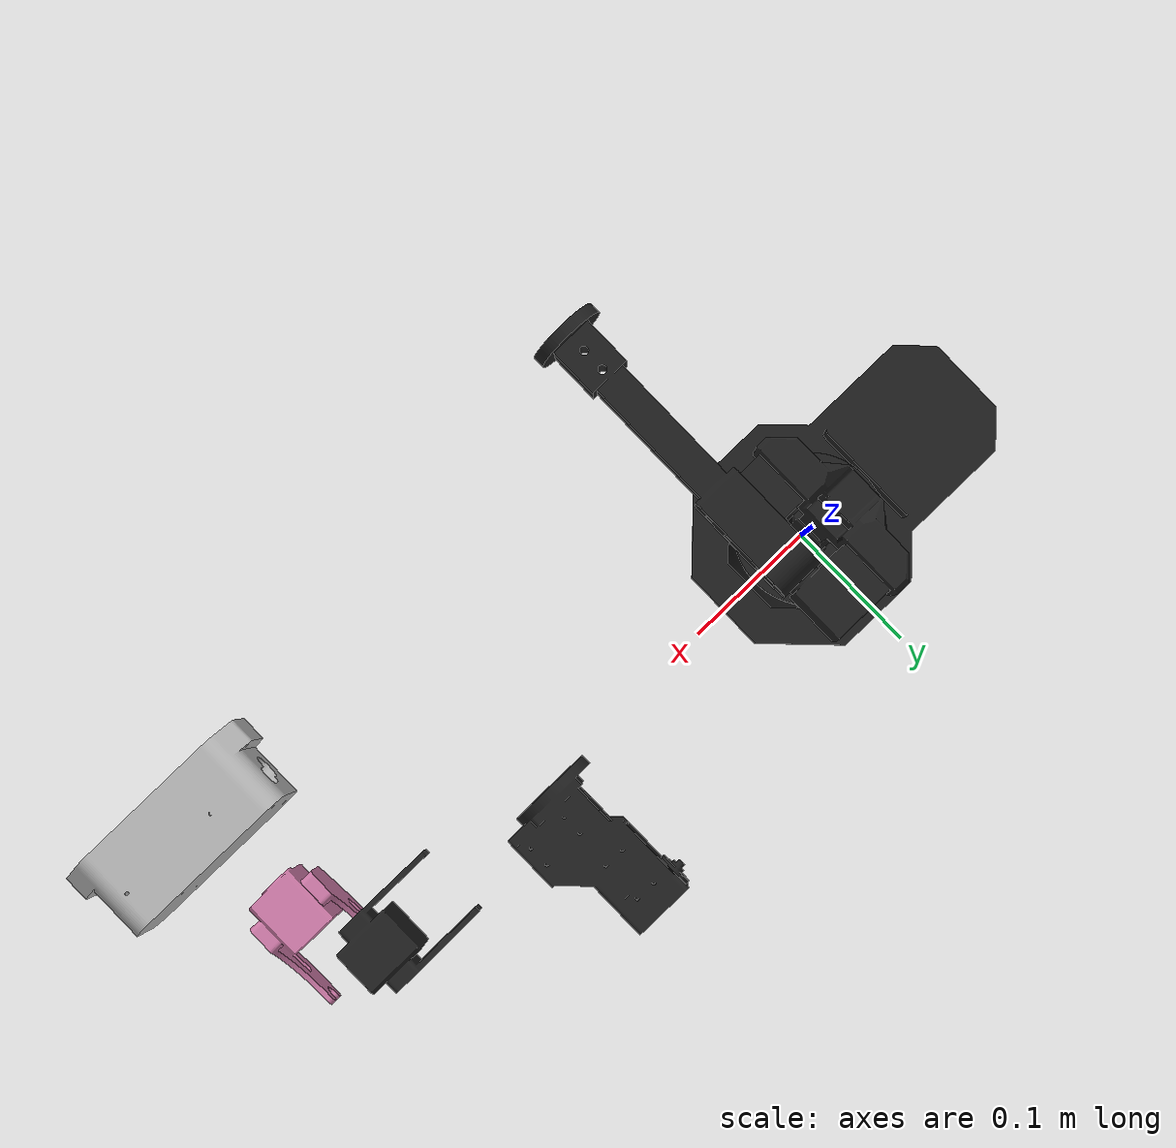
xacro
<?xml version="1.0"?>
<robot name="wx250s" xmlns:xacro="http://ros.org/wiki/xacro">

  <xacro:arg name="robot_name" default="wx250s"/>
  <xacro:arg name="base_link_frame" default="base_link"/>
  <xacro:arg name="show_ar_tag" default="false"/>
  <xacro:arg name="show_gripper_bar" default="true"/>
  <xacro:arg name="show_gripper_fingers" default="true"/>
  <xacro:arg name="use_world_frame" default="false"/>
  <xacro:arg name="external_urdf_loc" default=""/>
  <xacro:arg name="load_gazebo_configs" default="false"/>

  <xacro:property name="urdf_loc" value="$(arg external_urdf_loc)"/>
  <xacro:property name="pi_offset" value="0.00001"/>

  <xacro:if value="$(arg load_gazebo_configs)">
    <xacro:include filename="$(find interbotix_xsarm_gazebo)/config/interbotix_texture.gazebo"/>
  </xacro:if>

  <material name="interbotix_black">
    <texture filename="package://interbotix_xsarm_descriptions/meshes/interbotix_black.png"/>
  </material>

  <xacro:if value="$(arg use_world_frame)">
    <link name="world"/>
    <joint name="fixed" type="fixed">
      <parent link="world"/>
      <child link="$(arg robot_name)/$(arg base_link_frame)"/>
    </joint>
  </xacro:if>

  <link name="$(arg robot_name)/$(arg base_link_frame)">
    <visual>
      <origin rpy="0 0 ${pi/2}" xyz="0 0 0"/>
      <geometry>
        <mesh filename="package://wx250s_7dof_description/meshes/430-Base-v3.stl" scale="0.001 0.001 0.001"/>
      </geometry>
      <material name="interbotix_black"/>
    </visual>
    <collision>
      <origin rpy="0 0 ${pi/2}" xyz="0 0 0"/>
      <geometry>
        <mesh filename="package://wx250s_7dof_description/meshes/430-Base-v3.stl" scale="0.001 0.001 0.001"/>
      </geometry>
    </collision>
    <inertial>
      <origin rpy="0 0 ${pi/2}" xyz="-0.0380446000 0.0006138920 0.0193354000"/>
      <mass value="0.538736" />
      <inertia ixx="0.0021150000" iyy="0.0006921000" izz="0.0025240000" ixy="-0.0000163500" ixz="0.0000006998" iyz="0.0000464200" />
    </inertial>
  </link>

  <joint name="waist" type="revolute">
    <axis xyz="0 0 1"/>
    <limit effort="10" lower="-6.35" upper="0.00" velocity="${pi}"/>
    <origin rpy="0 0 0" xyz="0 0 0.072"/>
    <parent link="$(arg robot_name)/$(arg base_link_frame)"/>
    <child link="$(arg robot_name)/shoulder_link"/>
    <dynamics friction="0.1"/>
  </joint>

  <transmission name="trans_waist">
    <type>transmission_interface/SimpleTransmission</type>
    <joint name="waist">
      <hardwareInterface>hardware_interface/EffortJointInterface</hardwareInterface>
    </joint>
    <actuator name="waist_motor">
      <mechanicalReduction>1</mechanicalReduction>
    </actuator>
  </transmission>

  <link name="$(arg robot_name)/shoulder_link">
    <visual>
      <origin rpy="0 0 ${pi/2}" xyz="0 0 -0.003"/>
      <geometry>
        <mesh filename="package://wx250s_7dof_description/meshes/430-Dual-Shoulder-v2.stl" scale="0.001 0.001 0.001"/>
      </geometry>
      <material name="interbotix_black"/>
    </visual>
    <collision>
      <origin rpy="0 0 ${pi/2}" xyz="0 0 -0.003"/>
      <geometry>
        <mesh filename="package://wx250s_7dof_description/meshes/430-Dual-Shoulder-v2.stl" scale="0.001 0.001 0.001"/>
      </geometry>
    </collision>
    <inertial>
      <origin rpy="0 0 ${pi/2}" xyz="0.0000223482 0.0000414609 0.0066287000"/>
      <mass value="0.480879" />
      <inertia ixx="0.0003790000" iyy="0.0005557000" izz="0.0005889000" ixy="0.0000000022" ixz="-0.0000003561" iyz="0.0000012245" />
    </inertial>
  </link>

  <joint name="shoulder" type="revolute">
    <axis xyz="0 1 0"/>
    <limit effort="20" lower="-1.92" upper="1.70" velocity="${pi}"/>
    <origin rpy="0 0 0" xyz="0 0 0.03865"/>
    <parent link="$(arg robot_name)/shoulder_link"/>
    <child link="$(arg robot_name)/upper_arm_link"/>
    <dynamics friction="0.1"/>
  </joint>

  <transmission name="trans_shoulder">
    <type>transmission_interface/SimpleTransmission</type>
    <joint name="shoulder">
      <hardwareInterface>hardware_interface/EffortJointInterface</hardwareInterface>
    </joint>
    <actuator name="shoulder_motor">
      <mechanicalReduction>1</mechanicalReduction>
    </actuator>
  </transmission>

  <link name="$(arg robot_name)/upper_arm_link">
    <visual>
      <origin rpy="0 0 ${pi/2}" xyz="0 0 0"/>
      <geometry>
        <mesh filename="package://wx250s_7dof_description/meshes/UA---6---WX-250-v2.stl" scale="0.001 0.001 0.001"/>
      </geometry>
      <material name="interbotix_black"/>
    </visual>
    <collision>
      <origin rpy="0 0 ${pi/2}" xyz="0 0 0"/>
      <geometry>
        <mesh filename="package://wx250s_7dof_description/meshes/UA---6---WX-250-v2.stl" scale="0.001 0.001 0.001"/>
      </geometry>
    </collision>
    <inertial>
      <origin rpy="0 0 ${pi/2}" xyz="0.0171605000 0.0000002725 0.1913230000"/>
      <mass value="0.430811" />
      <inertia ixx="0.0034630000" iyy="0.0035870000" izz="0.0004566000" ixy="-0.0000000001" ixz="-0.0000000002" iyz="0.0004272000" />
    </inertial>
  </link>

  <joint name="elbow" type="revolute">
    <axis xyz="0 1 0"/>
    <limit effort="15" lower="-2.13" upper="1.60" velocity="${pi}"/>
    <origin rpy="0 0 0" xyz="0.04975 0 0.25"/>
    <parent link="$(arg robot_name)/upper_arm_link"/>
    <child link="$(arg robot_name)/upper_forearm_link"/>
    <dynamics friction="0.1"/>
  </joint>

  <transmission name="trans_elbow">
    <type>transmission_interface/SimpleTransmission</type>
    <joint name="elbow">
      <hardwareInterface>hardware_interface/EffortJointInterface</hardwareInterface>
    </joint>
    <actuator name="elbow_motor">
      <mechanicalReduction>1</mechanicalReduction>
    </actuator>
  </transmission>

  <link name="$(arg robot_name)/upper_forearm_link">
    <visual>
      <origin rpy="0 0 0" xyz="0 0 0"/>
      <geometry>
        <mesh filename="package://wx250s_7dof_description/meshes/SIMPLIFIED---WXA-250-6DOF-Upper-Forearm-v3.stl" scale="0.001 0.001 0.001"/>
      </geometry>
      <material name="interbotix_black"/>
    </visual>
    <collision>
      <origin rpy="0 0 0" xyz="0 0 0"/>
      <geometry>
        <mesh filename="package://wx250s_7dof_description/meshes/SIMPLIFIED---WXA-250-6DOF-Upper-Forearm-v3.stl" scale="0.001 0.001 0.001"/>
      </geometry>
    </collision>
    <inertial>
      <origin rpy="0 0 0" xyz="0.1079630000 0.0001158760 0"/>
      <mass value="0.234589" />
      <inertia ixx="0.0000397100" iyy="0.0008878000" izz="0.0008880000" ixy="0.0000023528" ixz="0" iyz="0" />
    </inertial>
  </link>

  <joint name="forearm_roll" type="revolute">
    <axis xyz="1 0 0"/>
    <limit effort="2" lower="-1.58" upper="1.51" velocity="${pi}"/>
    <origin rpy="0 0 0" xyz="0.175 0 0"/>
    <parent link="$(arg robot_name)/upper_forearm_link"/>
    <child link="$(arg robot_name)/lower_forearm_link"/>
    <dynamics friction="0.1"/>
  </joint>

  <transmission name="trans_forearm_roll">
    <type>transmission_interface/SimpleTransmission</type>
    <joint name="forearm_roll">
      <hardwareInterface>hardware_interface/EffortJointInterface</hardwareInterface>
    </joint>
    <actuator name="forearm_roll_motor">
      <mechanicalReduction>1</mechanicalReduction>
    </actuator>
  </transmission>

  <link name="$(arg robot_name)/lower_forearm_link">
    <visual>
      <origin rpy="${pi} 0 0" xyz="0 0 0"/>
      <geometry>
        <mesh filename="package://wx250s_7dof_description/meshes/SIMPLIFIED---WXA-250-6DOF-Lower-Forearm-v4.stl" scale="0.001 0.001 0.001"/>
      </geometry>
      <material name="interbotix_black"/>
    </visual>
    <collision>
      <origin rpy="${pi} 0 0" xyz="0 0 0"/>
      <geometry>
        <mesh filename="package://wx250s_7dof_description/meshes/SIMPLIFIED---WXA-250-6DOF-Lower-Forearm-v4.stl" scale="0.001 0.001 0.001"/>
      </geometry>
    </collision>
    <inertial>
      <origin rpy="${pi} 0 0" xyz="0.0374395000 0.0052225200 0"/>
      <mass value="0.220991" />
      <inertia ixx="0.0000636900" iyy="0.0001677000" izz="0.0001834000" ixy="-0.0000229200" ixz="0" iyz="0" />
    </inertial>
  </link>

  <joint name="wrist_angle" type="revolute">
    <axis xyz="0 1 0"/>
    <limit effort="5" lower="-1.54" upper="2.12" velocity="${pi}"/>
    <origin rpy="0 0 0" xyz="0.075 0 0"/>
    <parent link="$(arg robot_name)/lower_forearm_link"/>
    <child link="$(arg robot_name)/wrist_link"/>
    <dynamics friction="0.1"/>
  </joint>

  <transmission name="trans_wrist_angle">
    <type>transmission_interface/SimpleTransmission</type>
    <joint name="wrist_angle">
      <hardwareInterface>hardware_interface/EffortJointInterface</hardwareInterface>
    </joint>
    <actuator name="wrist_angle_motor">
      <mechanicalReduction>1</mechanicalReduction>
    </actuator>
  </transmission>

  <link name="$(arg robot_name)/wrist_link">
    <visual>
      <origin rpy="0 0 ${pi/2}" xyz="0 0 0"/>
      <geometry>
        <mesh filename="package://wx250s_7dof_description/meshes/430---Wrist-v3.stl" scale="0.001 0.001 0.001"/>
      </geometry>
      <material name="interbotix_black"/>
    </visual>
    <collision>
      <origin rpy="0 0 ${pi/2}" xyz="0 0 0"/>
      <geometry>
        <mesh filename="package://wx250s_7dof_description/meshes/430---Wrist-v3.stl" scale="0.001 0.001 0.001"/>
      </geometry>
    </collision>
    <inertial>
      <origin rpy="0 0 ${pi/2}" xyz="0.0423600000 -0.0000106630 0.0105770000"/>
      <mass value="0.084957" />
      <inertia ixx="0.0000308200" iyy="0.0000282200" izz="0.0000315200" ixy="0.0000000191" ixz="0.0000000023" iyz="0.0000025481" />
    </inertial>
  </link>

  <joint name="camera_roll" type="revolute">
    <axis xyz="1 0 0"/>
    <limit effort="1" lower="-2.78" upper="2.99" velocity="${pi}"/>
    <origin xyz="0.065 0 0" rpy="0 0 0"/>
    <parent link="$(arg robot_name)/wrist_link"/>
    <child link="$(arg robot_name)/camera_roll_link"/>
  </joint>

  <transmission name="trans_camera_roll">
    <type>transmission_interface/SimpleTransmission</type>
    <joint name="camera_roll">
      <hardwareInterface>hardware_interface/EffortJointInterface</hardwareInterface>
    </joint>
    <actuator name="camera_roll_motor">
      <mechanicalReduction>1</mechanicalReduction>
    </actuator>
  </transmission>

  <link name="$(arg robot_name)/camera_roll_link">
    <visual>
      <origin xyz="0 0 0" rpy="0 0 0"/>
      <geometry>
        <mesh filename="package://wx250s_7dof_description/meshes/430---Wrist-v3.stl" scale="0.001 0.001 0.001"/>
      </geometry>
    </visual>
    <collision>
      <geometry>
        <mesh filename="package://wx250s_7dof_description/meshes/430---Wrist-v3.stl" scale="0.001 0.001 0.001"/>
      </geometry>
    </collision>
    <inertial>
      <origin xyz="0 0 0"/>
      <mass value="0.05"/>
      <inertia ixx="5e-5" iyy="5e-5" izz="5e-5" ixy="0" ixz="0" iyz="0"/>
    </inertial>
  </link>

  <joint name="camera_yaw" type="revolute">
    <axis xyz="0 0 1"/>
    <limit effort="1" lower="-3.10" upper="3.07" velocity="${pi}"/>
    <origin xyz="0 0 0" rpy="0 0 0"/>
    <parent link="$(arg robot_name)/camera_roll_link"/>
    <child link="$(arg robot_name)/camera_yaw_link"/>
  </joint>

  <transmission name="trans_camera_yaw">
    <type>transmission_interface/SimpleTransmission</type>
    <joint name="camera_yaw">
      <hardwareInterface>hardware_interface/EffortJointInterface</hardwareInterface>
    </joint>
    <actuator name="camera_yaw_motor">
      <mechanicalReduction>1</mechanicalReduction>
    </actuator>
  </transmission>

  <link name="$(arg robot_name)/camera_yaw_link">
    <visual>
      <geometry>
        <mesh filename="package://wx250s_7dof_description/meshes/middlecamera.stl" scale="0.001 0.001 0.001"/>
      </geometry>
    </visual>
    <collision>
      <geometry>
        <mesh filename="package://wx250s_7dof_description/meshes/middlecamera.stl" scale="0.001 0.001 0.001"/>
      </geometry>
    </collision>
    <inertial>
      <origin xyz="0 0 0"/>
      <mass value="0.03"/>
      <inertia ixx="3e-5" iyy="3e-5" izz="3e-5" ixy="0" ixz="0" iyz="0"/>
    </inertial>
  </link>

  <xacro:if value="${urdf_loc != ''}">
    <xacro:include filename="${urdf_loc}"/>
  </xacro:if>

</robot>
